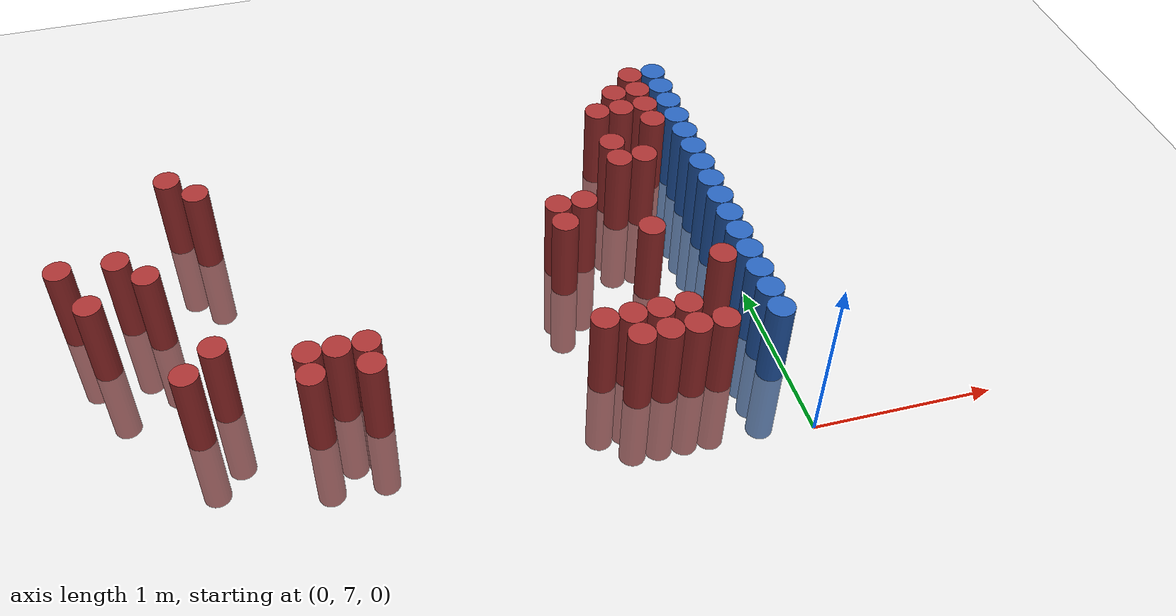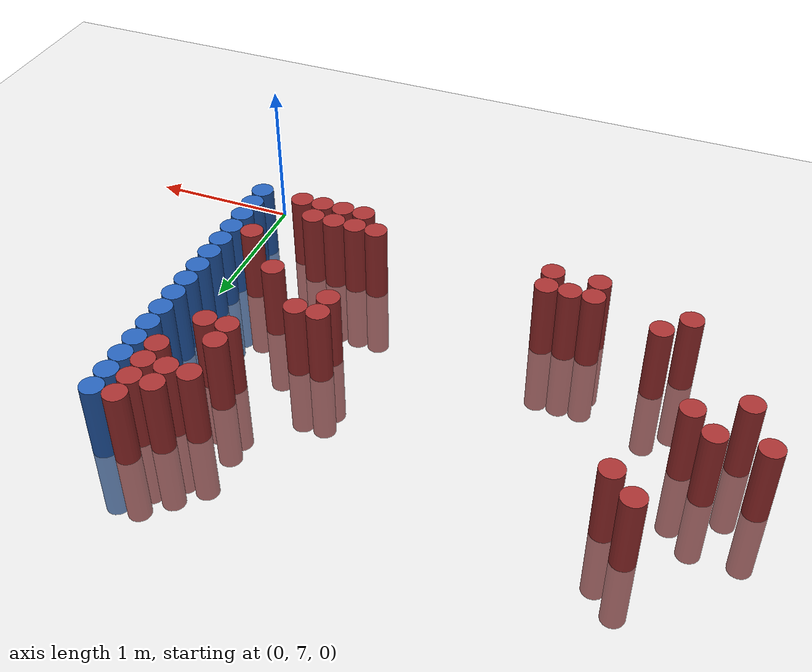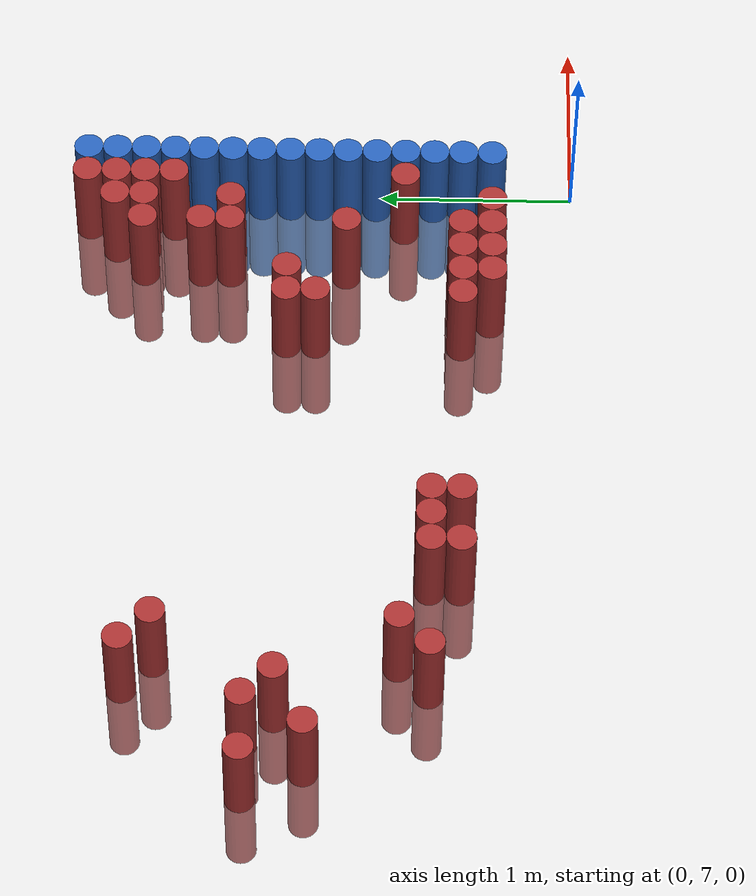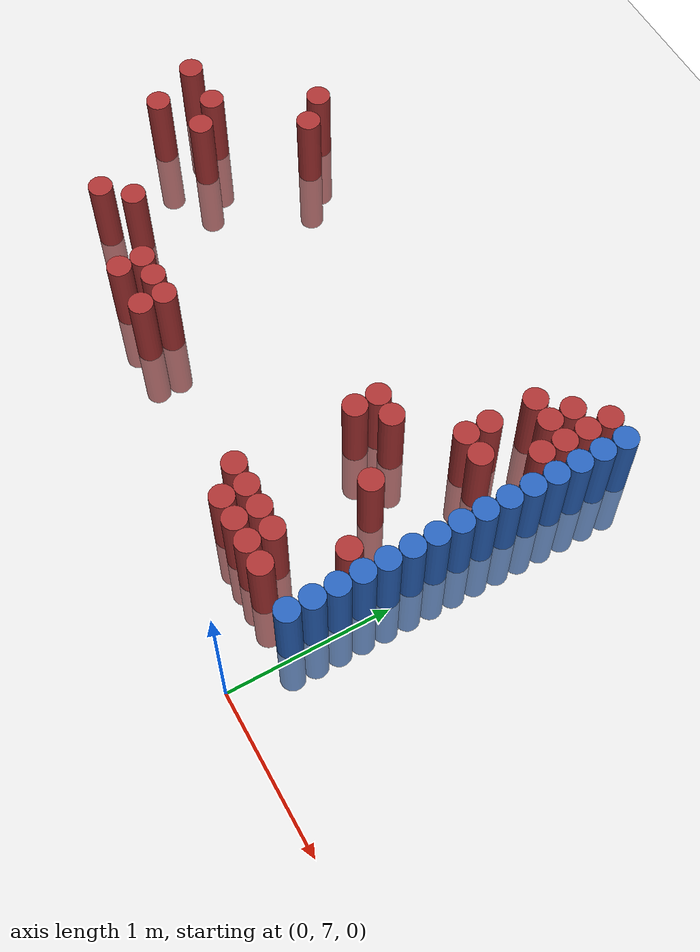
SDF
<sdf version="1.6">
 <world name="default">
  <model name="ground_plane">
   <static>1</static>
   <link name="link">
    <collision name="collision">
     <geometry><plane><normal>0 0 1</normal><size>100 100</size></plane></geometry>
     <surface><friction><ode><mu>100</mu><mu2>50</mu2></ode></friction></surface>
    </collision>
    <visual name="visual">
     <cast_shadows>0</cast_shadows>
     <geometry><plane><normal>0 0 1</normal><size>100 100</size></plane></geometry>
     <material>
      <script><uri>file://media/materials/scripts/gazebo.material</uri><name>Gazebo/Grey</name></script>
     </material>
    </visual>
   </link>
  </model>
  <model name="unit_cylinder_148">
   <static>1</static>
   <pose>-3.675000 8.625000 0.000000 0.000000 0.000000 0.000000</pose>
   <link name="link">
    <inertial>
     <mass>1</mass>
     <inertia><ixx>0.145833</ixx><ixy>0</ixy><ixz>0</ixz><iyy>0.145833</iyy><iyz>0</iyz><izz>0.125</izz></inertia>
    </inertial>
    <collision name="collision">
     <geometry><cylinder><radius>0.075000</radius><length>1</length></cylinder></geometry>
    </collision>
    <visual name="visual">
     <geometry><cylinder><radius>0.075000</radius><length>1</length></cylinder></geometry>
     <material>
      <ambient>0.648000 0.192000 0.192000 1</ambient>
      <diffuse>0.648000 0.192000 0.192000 1</diffuse>
     </material>
     <material>
      <script><name>Gazebo/Grey</name><uri>file://media/materials/scripts/gazebo.material</uri></script>
     </material>
    </visual>
   </link>
  </model>
  <model name="unit_cylinder_149">
   <static>1</static>
   <pose>-3.525000 8.325000 0.000000 0.000000 0.000000 0.000000</pose>
   <link name="link">
    <inertial>
     <mass>1</mass>
     <inertia><ixx>0.145833</ixx><ixy>0</ixy><ixz>0</ixz><iyy>0.145833</iyy><iyz>0</iyz><izz>0.125</izz></inertia>
    </inertial>
    <collision name="collision">
     <geometry><cylinder><radius>0.075000</radius><length>1</length></cylinder></geometry>
    </collision>
    <visual name="visual">
     <geometry><cylinder><radius>0.075000</radius><length>1</length></cylinder></geometry>
     <material>
      <ambient>0.648000 0.192000 0.192000 1</ambient>
      <diffuse>0.648000 0.192000 0.192000 1</diffuse>
     </material>
     <material>
      <script><name>Gazebo/Grey</name><uri>file://media/materials/scripts/gazebo.material</uri></script>
     </material>
    </visual>
   </link>
  </model>
  <model name="unit_cylinder_150">
   <static>1</static>
   <pose>-3.375000 8.625000 0.000000 0.000000 0.000000 0.000000</pose>
   <link name="link">
    <inertial>
     <mass>1</mass>
     <inertia><ixx>0.145833</ixx><ixy>0</ixy><ixz>0</ixz><iyy>0.145833</iyy><iyz>0</iyz><izz>0.125</izz></inertia>
    </inertial>
    <collision name="collision">
     <geometry><cylinder><radius>0.075000</radius><length>1</length></cylinder></geometry>
    </collision>
    <visual name="visual">
     <geometry><cylinder><radius>0.075000</radius><length>1</length></cylinder></geometry>
     <material>
      <ambient>0.648000 0.192000 0.192000 1</ambient>
      <diffuse>0.648000 0.192000 0.192000 1</diffuse>
     </material>
     <material>
      <script><name>Gazebo/Grey</name><uri>file://media/materials/scripts/gazebo.material</uri></script>
     </material>
    </visual>
   </link>
  </model>
  <model name="unit_cylinder_152">
   <static>1</static>
   <pose>-3.225000 8.475000 0.000000 0.000000 0.000000 0.000000</pose>
   <link name="link">
    <inertial>
     <mass>1</mass>
     <inertia><ixx>0.145833</ixx><ixy>0</ixy><ixz>0</ixz><iyy>0.145833</iyy><iyz>0</iyz><izz>0.125</izz></inertia>
    </inertial>
    <collision name="collision">
     <geometry><cylinder><radius>0.075000</radius><length>1</length></cylinder></geometry>
    </collision>
    <visual name="visual">
     <geometry><cylinder><radius>0.075000</radius><length>1</length></cylinder></geometry>
     <material>
      <ambient>0.648000 0.192000 0.192000 1</ambient>
      <diffuse>0.648000 0.192000 0.192000 1</diffuse>
     </material>
     <material>
      <script><name>Gazebo/Grey</name><uri>file://media/materials/scripts/gazebo.material</uri></script>
     </material>
    </visual>
   </link>
  </model>
  <model name="unit_cylinder_156">
   <static>1</static>
   <pose>-3.075000 7.725000 0.000000 0.000000 0.000000 0.000000</pose>
   <link name="link">
    <inertial>
     <mass>1</mass>
     <inertia><ixx>0.145833</ixx><ixy>0</ixy><ixz>0</ixz><iyy>0.145833</iyy><iyz>0</iyz><izz>0.125</izz></inertia>
    </inertial>
    <collision name="collision">
     <geometry><cylinder><radius>0.075000</radius><length>1</length></cylinder></geometry>
    </collision>
    <visual name="visual">
     <geometry><cylinder><radius>0.075000</radius><length>1</length></cylinder></geometry>
     <material>
      <ambient>0.648000 0.192000 0.192000 1</ambient>
      <diffuse>0.648000 0.192000 0.192000 1</diffuse>
     </material>
     <material>
      <script><name>Gazebo/Grey</name><uri>file://media/materials/scripts/gazebo.material</uri></script>
     </material>
    </visual>
   </link>
  </model>
  <model name="unit_cylinder_157">
   <static>1</static>
   <pose>-3.075000 9.225000 0.000000 0.000000 0.000000 0.000000</pose>
   <link name="link">
    <inertial>
     <mass>1</mass>
     <inertia><ixx>0.145833</ixx><ixy>0</ixy><ixz>0</ixz><iyy>0.145833</iyy><iyz>0</iyz><izz>0.125</izz></inertia>
    </inertial>
    <collision name="collision">
     <geometry><cylinder><radius>0.075000</radius><length>1</length></cylinder></geometry>
    </collision>
    <visual name="visual">
     <geometry><cylinder><radius>0.075000</radius><length>1</length></cylinder></geometry>
     <material>
      <ambient>0.648000 0.192000 0.192000 1</ambient>
      <diffuse>0.648000 0.192000 0.192000 1</diffuse>
     </material>
     <material>
      <script><name>Gazebo/Grey</name><uri>file://media/materials/scripts/gazebo.material</uri></script>
     </material>
    </visual>
   </link>
  </model>
  <model name="unit_cylinder_163">
   <static>1</static>
   <pose>-2.925000 7.875000 0.000000 0.000000 0.000000 0.000000</pose>
   <link name="link">
    <inertial>
     <mass>1</mass>
     <inertia><ixx>0.145833</ixx><ixy>0</ixy><ixz>0</ixz><iyy>0.145833</iyy><iyz>0</iyz><izz>0.125</izz></inertia>
    </inertial>
    <collision name="collision">
     <geometry><cylinder><radius>0.075000</radius><length>1</length></cylinder></geometry>
    </collision>
    <visual name="visual">
     <geometry><cylinder><radius>0.075000</radius><length>1</length></cylinder></geometry>
     <material>
      <ambient>0.648000 0.192000 0.192000 1</ambient>
      <diffuse>0.648000 0.192000 0.192000 1</diffuse>
     </material>
     <material>
      <script><name>Gazebo/Grey</name><uri>file://media/materials/scripts/gazebo.material</uri></script>
     </material>
    </visual>
   </link>
  </model>
  <model name="unit_cylinder_164">
   <static>1</static>
   <pose>-2.925000 9.075000 0.000000 0.000000 0.000000 0.000000</pose>
   <link name="link">
    <inertial>
     <mass>1</mass>
     <inertia><ixx>0.145833</ixx><ixy>0</ixy><ixz>0</ixz><iyy>0.145833</iyy><iyz>0</iyz><izz>0.125</izz></inertia>
    </inertial>
    <collision name="collision">
     <geometry><cylinder><radius>0.075000</radius><length>1</length></cylinder></geometry>
    </collision>
    <visual name="visual">
     <geometry><cylinder><radius>0.075000</radius><length>1</length></cylinder></geometry>
     <material>
      <ambient>0.648000 0.192000 0.192000 1</ambient>
      <diffuse>0.648000 0.192000 0.192000 1</diffuse>
     </material>
     <material>
      <script><name>Gazebo/Grey</name><uri>file://media/materials/scripts/gazebo.material</uri></script>
     </material>
    </visual>
   </link>
  </model>
  <model name="unit_cylinder_170">
   <static>1</static>
   <pose>-2.475000 7.575000 0.000000 0.000000 0.000000 0.000000</pose>
   <link name="link">
    <inertial>
     <mass>1</mass>
     <inertia><ixx>0.145833</ixx><ixy>0</ixy><ixz>0</ixz><iyy>0.145833</iyy><iyz>0</iyz><izz>0.125</izz></inertia>
    </inertial>
    <collision name="collision">
     <geometry><cylinder><radius>0.075000</radius><length>1</length></cylinder></geometry>
    </collision>
    <visual name="visual">
     <geometry><cylinder><radius>0.075000</radius><length>1</length></cylinder></geometry>
     <material>
      <ambient>0.648000 0.192000 0.192000 1</ambient>
      <diffuse>0.648000 0.192000 0.192000 1</diffuse>
     </material>
     <material>
      <script><name>Gazebo/Grey</name><uri>file://media/materials/scripts/gazebo.material</uri></script>
     </material>
    </visual>
   </link>
  </model>
  <model name="unit_cylinder_171">
   <static>1</static>
   <pose>-2.475000 7.725000 0.000000 0.000000 0.000000 0.000000</pose>
   <link name="link">
    <inertial>
     <mass>1</mass>
     <inertia><ixx>0.145833</ixx><ixy>0</ixy><ixz>0</ixz><iyy>0.145833</iyy><iyz>0</iyz><izz>0.125</izz></inertia>
    </inertial>
    <collision name="collision">
     <geometry><cylinder><radius>0.075000</radius><length>1</length></cylinder></geometry>
    </collision>
    <visual name="visual">
     <geometry><cylinder><radius>0.075000</radius><length>1</length></cylinder></geometry>
     <material>
      <ambient>0.648000 0.192000 0.192000 1</ambient>
      <diffuse>0.648000 0.192000 0.192000 1</diffuse>
     </material>
     <material>
      <script><name>Gazebo/Grey</name><uri>file://media/materials/scripts/gazebo.material</uri></script>
     </material>
    </visual>
   </link>
  </model>
  <model name="unit_cylinder_175">
   <static>1</static>
   <pose>-2.325000 7.725000 0.000000 0.000000 0.000000 0.000000</pose>
   <link name="link">
    <inertial>
     <mass>1</mass>
     <inertia><ixx>0.145833</ixx><ixy>0</ixy><ixz>0</ixz><iyy>0.145833</iyy><iyz>0</iyz><izz>0.125</izz></inertia>
    </inertial>
    <collision name="collision">
     <geometry><cylinder><radius>0.075000</radius><length>1</length></cylinder></geometry>
    </collision>
    <visual name="visual">
     <geometry><cylinder><radius>0.075000</radius><length>1</length></cylinder></geometry>
     <material>
      <ambient>0.648000 0.192000 0.192000 1</ambient>
      <diffuse>0.648000 0.192000 0.192000 1</diffuse>
     </material>
     <material>
      <script><name>Gazebo/Grey</name><uri>file://media/materials/scripts/gazebo.material</uri></script>
     </material>
    </visual>
   </link>
  </model>
  <model name="unit_cylinder_184">
   <static>1</static>
   <pose>-2.175000 7.575000 0.000000 0.000000 0.000000 0.000000</pose>
   <link name="link">
    <inertial>
     <mass>1</mass>
     <inertia><ixx>0.145833</ixx><ixy>0</ixy><ixz>0</ixz><iyy>0.145833</iyy><iyz>0</iyz><izz>0.125</izz></inertia>
    </inertial>
    <collision name="collision">
     <geometry><cylinder><radius>0.075000</radius><length>1</length></cylinder></geometry>
    </collision>
    <visual name="visual">
     <geometry><cylinder><radius>0.075000</radius><length>1</length></cylinder></geometry>
     <material>
      <ambient>0.648000 0.192000 0.192000 1</ambient>
      <diffuse>0.648000 0.192000 0.192000 1</diffuse>
     </material>
     <material>
      <script><name>Gazebo/Grey</name><uri>file://media/materials/scripts/gazebo.material</uri></script>
     </material>
    </visual>
   </link>
  </model>
  <model name="unit_cylinder_185">
   <static>1</static>
   <pose>-2.175000 7.725000 0.000000 0.000000 0.000000 0.000000</pose>
   <link name="link">
    <inertial>
     <mass>1</mass>
     <inertia><ixx>0.145833</ixx><ixy>0</ixy><ixz>0</ixz><iyy>0.145833</iyy><iyz>0</iyz><izz>0.125</izz></inertia>
    </inertial>
    <collision name="collision">
     <geometry><cylinder><radius>0.075000</radius><length>1</length></cylinder></geometry>
    </collision>
    <visual name="visual">
     <geometry><cylinder><radius>0.075000</radius><length>1</length></cylinder></geometry>
     <material>
      <ambient>0.648000 0.192000 0.192000 1</ambient>
      <diffuse>0.648000 0.192000 0.192000 1</diffuse>
     </material>
     <material>
      <script><name>Gazebo/Grey</name><uri>file://media/materials/scripts/gazebo.material</uri></script>
     </material>
    </visual>
   </link>
  </model>
  <model name="unit_cylinder_194">
   <static>1</static>
   <pose>-0.975000 7.575000 0.000000 0.000000 0.000000 0.000000</pose>
   <link name="link">
    <inertial>
     <mass>1</mass>
     <inertia><ixx>0.145833</ixx><ixy>0</ixy><ixz>0</ixz><iyy>0.145833</iyy><iyz>0</iyz><izz>0.125</izz></inertia>
    </inertial>
    <collision name="collision">
     <geometry><cylinder><radius>0.075000</radius><length>1</length></cylinder></geometry>
    </collision>
    <visual name="visual">
     <geometry><cylinder><radius>0.075000</radius><length>1</length></cylinder></geometry>
     <material>
      <ambient>0.648000 0.192000 0.192000 1</ambient>
      <diffuse>0.648000 0.192000 0.192000 1</diffuse>
     </material>
     <material>
      <script><name>Gazebo/Grey</name><uri>file://media/materials/scripts/gazebo.material</uri></script>
     </material>
    </visual>
   </link>
  </model>
  <model name="unit_cylinder_195">
   <static>1</static>
   <pose>-0.975000 8.325000 0.000000 0.000000 0.000000 0.000000</pose>
   <link name="link">
    <inertial>
     <mass>1</mass>
     <inertia><ixx>0.145833</ixx><ixy>0</ixy><ixz>0</ixz><iyy>0.145833</iyy><iyz>0</iyz><izz>0.125</izz></inertia>
    </inertial>
    <collision name="collision">
     <geometry><cylinder><radius>0.075000</radius><length>1</length></cylinder></geometry>
    </collision>
    <visual name="visual">
     <geometry><cylinder><radius>0.075000</radius><length>1</length></cylinder></geometry>
     <material>
      <ambient>0.648000 0.192000 0.192000 1</ambient>
      <diffuse>0.648000 0.192000 0.192000 1</diffuse>
     </material>
     <material>
      <script><name>Gazebo/Grey</name><uri>file://media/materials/scripts/gazebo.material</uri></script>
     </material>
    </visual>
   </link>
  </model>
  <model name="unit_cylinder_196">
   <static>1</static>
   <pose>-0.975000 8.475000 0.000000 0.000000 0.000000 0.000000</pose>
   <link name="link">
    <inertial>
     <mass>1</mass>
     <inertia><ixx>0.145833</ixx><ixy>0</ixy><ixz>0</ixz><iyy>0.145833</iyy><iyz>0</iyz><izz>0.125</izz></inertia>
    </inertial>
    <collision name="collision">
     <geometry><cylinder><radius>0.075000</radius><length>1</length></cylinder></geometry>
    </collision>
    <visual name="visual">
     <geometry><cylinder><radius>0.075000</radius><length>1</length></cylinder></geometry>
     <material>
      <ambient>0.648000 0.192000 0.192000 1</ambient>
      <diffuse>0.648000 0.192000 0.192000 1</diffuse>
     </material>
     <material>
      <script><name>Gazebo/Grey</name><uri>file://media/materials/scripts/gazebo.material</uri></script>
     </material>
    </visual>
   </link>
  </model>
  <model name="unit_cylinder_197">
   <static>1</static>
   <pose>-0.825000 7.425000 0.000000 0.000000 0.000000 0.000000</pose>
   <link name="link">
    <inertial>
     <mass>1</mass>
     <inertia><ixx>0.145833</ixx><ixy>0</ixy><ixz>0</ixz><iyy>0.145833</iyy><iyz>0</iyz><izz>0.125</izz></inertia>
    </inertial>
    <collision name="collision">
     <geometry><cylinder><radius>0.075000</radius><length>1</length></cylinder></geometry>
    </collision>
    <visual name="visual">
     <geometry><cylinder><radius>0.075000</radius><length>1</length></cylinder></geometry>
     <material>
      <ambient>0.648000 0.192000 0.192000 1</ambient>
      <diffuse>0.648000 0.192000 0.192000 1</diffuse>
     </material>
     <material>
      <script><name>Gazebo/Grey</name><uri>file://media/materials/scripts/gazebo.material</uri></script>
     </material>
    </visual>
   </link>
  </model>
  <model name="unit_cylinder_198">
   <static>1</static>
   <pose>-0.825000 7.575000 0.000000 0.000000 0.000000 0.000000</pose>
   <link name="link">
    <inertial>
     <mass>1</mass>
     <inertia><ixx>0.145833</ixx><ixy>0</ixy><ixz>0</ixz><iyy>0.145833</iyy><iyz>0</iyz><izz>0.125</izz></inertia>
    </inertial>
    <collision name="collision">
     <geometry><cylinder><radius>0.075000</radius><length>1</length></cylinder></geometry>
    </collision>
    <visual name="visual">
     <geometry><cylinder><radius>0.075000</radius><length>1</length></cylinder></geometry>
     <material>
      <ambient>0.648000 0.192000 0.192000 1</ambient>
      <diffuse>0.648000 0.192000 0.192000 1</diffuse>
     </material>
     <material>
      <script><name>Gazebo/Grey</name><uri>file://media/materials/scripts/gazebo.material</uri></script>
     </material>
    </visual>
   </link>
  </model>
  <model name="unit_cylinder_199">
   <static>1</static>
   <pose>-0.825000 8.475000 0.000000 0.000000 0.000000 0.000000</pose>
   <link name="link">
    <inertial>
     <mass>1</mass>
     <inertia><ixx>0.145833</ixx><ixy>0</ixy><ixz>0</ixz><iyy>0.145833</iyy><iyz>0</iyz><izz>0.125</izz></inertia>
    </inertial>
    <collision name="collision">
     <geometry><cylinder><radius>0.075000</radius><length>1</length></cylinder></geometry>
    </collision>
    <visual name="visual">
     <geometry><cylinder><radius>0.075000</radius><length>1</length></cylinder></geometry>
     <material>
      <ambient>0.648000 0.192000 0.192000 1</ambient>
      <diffuse>0.648000 0.192000 0.192000 1</diffuse>
     </material>
     <material>
      <script><name>Gazebo/Grey</name><uri>file://media/materials/scripts/gazebo.material</uri></script>
     </material>
    </visual>
   </link>
  </model>
  <model name="unit_cylinder_200">
   <static>1</static>
   <pose>-0.675000 7.425000 0.000000 0.000000 0.000000 0.000000</pose>
   <link name="link">
    <inertial>
     <mass>1</mass>
     <inertia><ixx>0.145833</ixx><ixy>0</ixy><ixz>0</ixz><iyy>0.145833</iyy><iyz>0</iyz><izz>0.125</izz></inertia>
    </inertial>
    <collision name="collision">
     <geometry><cylinder><radius>0.075000</radius><length>1</length></cylinder></geometry>
    </collision>
    <visual name="visual">
     <geometry><cylinder><radius>0.075000</radius><length>1</length></cylinder></geometry>
     <material>
      <ambient>0.648000 0.192000 0.192000 1</ambient>
      <diffuse>0.648000 0.192000 0.192000 1</diffuse>
     </material>
     <material>
      <script><name>Gazebo/Grey</name><uri>file://media/materials/scripts/gazebo.material</uri></script>
     </material>
    </visual>
   </link>
  </model>
  <model name="unit_cylinder_201">
   <static>1</static>
   <pose>-0.675000 7.575000 0.000000 0.000000 0.000000 0.000000</pose>
   <link name="link">
    <inertial>
     <mass>1</mass>
     <inertia><ixx>0.145833</ixx><ixy>0</ixy><ixz>0</ixz><iyy>0.145833</iyy><iyz>0</iyz><izz>0.125</izz></inertia>
    </inertial>
    <collision name="collision">
     <geometry><cylinder><radius>0.075000</radius><length>1</length></cylinder></geometry>
    </collision>
    <visual name="visual">
     <geometry><cylinder><radius>0.075000</radius><length>1</length></cylinder></geometry>
     <material>
      <ambient>0.648000 0.192000 0.192000 1</ambient>
      <diffuse>0.648000 0.192000 0.192000 1</diffuse>
     </material>
     <material>
      <script><name>Gazebo/Grey</name><uri>file://media/materials/scripts/gazebo.material</uri></script>
     </material>
    </visual>
   </link>
  </model>
  <model name="unit_cylinder_202">
   <static>1</static>
   <pose>-0.525000 7.425000 0.000000 0.000000 0.000000 0.000000</pose>
   <link name="link">
    <inertial>
     <mass>1</mass>
     <inertia><ixx>0.145833</ixx><ixy>0</ixy><ixz>0</ixz><iyy>0.145833</iyy><iyz>0</iyz><izz>0.125</izz></inertia>
    </inertial>
    <collision name="collision">
     <geometry><cylinder><radius>0.075000</radius><length>1</length></cylinder></geometry>
    </collision>
    <visual name="visual">
     <geometry><cylinder><radius>0.075000</radius><length>1</length></cylinder></geometry>
     <material>
      <ambient>0.648000 0.192000 0.192000 1</ambient>
      <diffuse>0.648000 0.192000 0.192000 1</diffuse>
     </material>
     <material>
      <script><name>Gazebo/Grey</name><uri>file://media/materials/scripts/gazebo.material</uri></script>
     </material>
    </visual>
   </link>
  </model>
  <model name="unit_cylinder_203">
   <static>1</static>
   <pose>-0.525000 7.575000 0.000000 0.000000 0.000000 0.000000</pose>
   <link name="link">
    <inertial>
     <mass>1</mass>
     <inertia><ixx>0.145833</ixx><ixy>0</ixy><ixz>0</ixz><iyy>0.145833</iyy><iyz>0</iyz><izz>0.125</izz></inertia>
    </inertial>
    <collision name="collision">
     <geometry><cylinder><radius>0.075000</radius><length>1</length></cylinder></geometry>
    </collision>
    <visual name="visual">
     <geometry><cylinder><radius>0.075000</radius><length>1</length></cylinder></geometry>
     <material>
      <ambient>0.648000 0.192000 0.192000 1</ambient>
      <diffuse>0.648000 0.192000 0.192000 1</diffuse>
     </material>
     <material>
      <script><name>Gazebo/Grey</name><uri>file://media/materials/scripts/gazebo.material</uri></script>
     </material>
    </visual>
   </link>
  </model>
  <model name="unit_cylinder_204">
   <static>1</static>
   <pose>-0.525000 8.175000 0.000000 0.000000 0.000000 0.000000</pose>
   <link name="link">
    <inertial>
     <mass>1</mass>
     <inertia><ixx>0.145833</ixx><ixy>0</ixy><ixz>0</ixz><iyy>0.145833</iyy><iyz>0</iyz><izz>0.125</izz></inertia>
    </inertial>
    <collision name="collision">
     <geometry><cylinder><radius>0.075000</radius><length>1</length></cylinder></geometry>
    </collision>
    <visual name="visual">
     <geometry><cylinder><radius>0.075000</radius><length>1</length></cylinder></geometry>
     <material>
      <ambient>0.648000 0.192000 0.192000 1</ambient>
      <diffuse>0.648000 0.192000 0.192000 1</diffuse>
     </material>
     <material>
      <script><name>Gazebo/Grey</name><uri>file://media/materials/scripts/gazebo.material</uri></script>
     </material>
    </visual>
   </link>
  </model>
  <model name="unit_cylinder_205">
   <static>1</static>
   <pose>-0.525000 8.775000 0.000000 0.000000 0.000000 0.000000</pose>
   <link name="link">
    <inertial>
     <mass>1</mass>
     <inertia><ixx>0.145833</ixx><ixy>0</ixy><ixz>0</ixz><iyy>0.145833</iyy><iyz>0</iyz><izz>0.125</izz></inertia>
    </inertial>
    <collision name="collision">
     <geometry><cylinder><radius>0.075000</radius><length>1</length></cylinder></geometry>
    </collision>
    <visual name="visual">
     <geometry><cylinder><radius>0.075000</radius><length>1</length></cylinder></geometry>
     <material>
      <ambient>0.648000 0.192000 0.192000 1</ambient>
      <diffuse>0.648000 0.192000 0.192000 1</diffuse>
     </material>
     <material>
      <script><name>Gazebo/Grey</name><uri>file://media/materials/scripts/gazebo.material</uri></script>
     </material>
    </visual>
   </link>
  </model>
  <model name="unit_cylinder_206">
   <static>1</static>
   <pose>-0.525000 8.925000 0.000000 0.000000 0.000000 0.000000</pose>
   <link name="link">
    <inertial>
     <mass>1</mass>
     <inertia><ixx>0.145833</ixx><ixy>0</ixy><ixz>0</ixz><iyy>0.145833</iyy><iyz>0</iyz><izz>0.125</izz></inertia>
    </inertial>
    <collision name="collision">
     <geometry><cylinder><radius>0.075000</radius><length>1</length></cylinder></geometry>
    </collision>
    <visual name="visual">
     <geometry><cylinder><radius>0.075000</radius><length>1</length></cylinder></geometry>
     <material>
      <ambient>0.648000 0.192000 0.192000 1</ambient>
      <diffuse>0.648000 0.192000 0.192000 1</diffuse>
     </material>
     <material>
      <script><name>Gazebo/Grey</name><uri>file://media/materials/scripts/gazebo.material</uri></script>
     </material>
    </visual>
   </link>
  </model>
  <model name="unit_cylinder_207">
   <static>1</static>
   <pose>-0.525000 9.225000 0.000000 0.000000 0.000000 0.000000</pose>
   <link name="link">
    <inertial>
     <mass>1</mass>
     <inertia><ixx>0.145833</ixx><ixy>0</ixy><ixz>0</ixz><iyy>0.145833</iyy><iyz>0</iyz><izz>0.125</izz></inertia>
    </inertial>
    <collision name="collision">
     <geometry><cylinder><radius>0.075000</radius><length>1</length></cylinder></geometry>
    </collision>
    <visual name="visual">
     <geometry><cylinder><radius>0.075000</radius><length>1</length></cylinder></geometry>
     <material>
      <ambient>0.648000 0.192000 0.192000 1</ambient>
      <diffuse>0.648000 0.192000 0.192000 1</diffuse>
     </material>
     <material>
      <script><name>Gazebo/Grey</name><uri>file://media/materials/scripts/gazebo.material</uri></script>
     </material>
    </visual>
   </link>
  </model>
  <model name="unit_cylinder_209">
   <static>1</static>
   <pose>-0.375000 7.425000 0.000000 0.000000 0.000000 0.000000</pose>
   <link name="link">
    <inertial>
     <mass>1</mass>
     <inertia><ixx>0.145833</ixx><ixy>0</ixy><ixz>0</ixz><iyy>0.145833</iyy><iyz>0</iyz><izz>0.125</izz></inertia>
    </inertial>
    <collision name="collision">
     <geometry><cylinder><radius>0.075000</radius><length>1</length></cylinder></geometry>
    </collision>
    <visual name="visual">
     <geometry><cylinder><radius>0.075000</radius><length>1</length></cylinder></geometry>
     <material>
      <ambient>0.648000 0.192000 0.192000 1</ambient>
      <diffuse>0.648000 0.192000 0.192000 1</diffuse>
     </material>
     <material>
      <script><name>Gazebo/Grey</name><uri>file://media/materials/scripts/gazebo.material</uri></script>
     </material>
    </visual>
   </link>
  </model>
  <model name="unit_cylinder_210">
   <static>1</static>
   <pose>-0.375000 8.775000 0.000000 0.000000 0.000000 0.000000</pose>
   <link name="link">
    <inertial>
     <mass>1</mass>
     <inertia><ixx>0.145833</ixx><ixy>0</ixy><ixz>0</ixz><iyy>0.145833</iyy><iyz>0</iyz><izz>0.125</izz></inertia>
    </inertial>
    <collision name="collision">
     <geometry><cylinder><radius>0.075000</radius><length>1</length></cylinder></geometry>
    </collision>
    <visual name="visual">
     <geometry><cylinder><radius>0.075000</radius><length>1</length></cylinder></geometry>
     <material>
      <ambient>0.648000 0.192000 0.192000 1</ambient>
      <diffuse>0.648000 0.192000 0.192000 1</diffuse>
     </material>
     <material>
      <script><name>Gazebo/Grey</name><uri>file://media/materials/scripts/gazebo.material</uri></script>
     </material>
    </visual>
   </link>
  </model>
  <model name="unit_cylinder_211">
   <static>1</static>
   <pose>-0.375000 9.225000 0.000000 0.000000 0.000000 0.000000</pose>
   <link name="link">
    <inertial>
     <mass>1</mass>
     <inertia><ixx>0.145833</ixx><ixy>0</ixy><ixz>0</ixz><iyy>0.145833</iyy><iyz>0</iyz><izz>0.125</izz></inertia>
    </inertial>
    <collision name="collision">
     <geometry><cylinder><radius>0.075000</radius><length>1</length></cylinder></geometry>
    </collision>
    <visual name="visual">
     <geometry><cylinder><radius>0.075000</radius><length>1</length></cylinder></geometry>
     <material>
      <ambient>0.648000 0.192000 0.192000 1</ambient>
      <diffuse>0.648000 0.192000 0.192000 1</diffuse>
     </material>
     <material>
      <script><name>Gazebo/Grey</name><uri>file://media/materials/scripts/gazebo.material</uri></script>
     </material>
    </visual>
   </link>
  </model>
  <model name="unit_cylinder_212">
   <static>1</static>
   <pose>-0.375000 9.375000 0.000000 0.000000 0.000000 0.000000</pose>
   <link name="link">
    <inertial>
     <mass>1</mass>
     <inertia><ixx>0.145833</ixx><ixy>0</ixy><ixz>0</ixz><iyy>0.145833</iyy><iyz>0</iyz><izz>0.125</izz></inertia>
    </inertial>
    <collision name="collision">
     <geometry><cylinder><radius>0.075000</radius><length>1</length></cylinder></geometry>
    </collision>
    <visual name="visual">
     <geometry><cylinder><radius>0.075000</radius><length>1</length></cylinder></geometry>
     <material>
      <ambient>0.648000 0.192000 0.192000 1</ambient>
      <diffuse>0.648000 0.192000 0.192000 1</diffuse>
     </material>
     <material>
      <script><name>Gazebo/Grey</name><uri>file://media/materials/scripts/gazebo.material</uri></script>
     </material>
    </visual>
   </link>
  </model>
  <model name="unit_cylinder_219">
   <static>1</static>
   <pose>-0.225000 7.875000 0.000000 0.000000 0.000000 0.000000</pose>
   <link name="link">
    <inertial>
     <mass>1</mass>
     <inertia><ixx>0.145833</ixx><ixy>0</ixy><ixz>0</ixz><iyy>0.145833</iyy><iyz>0</iyz><izz>0.125</izz></inertia>
    </inertial>
    <collision name="collision">
     <geometry><cylinder><radius>0.075000</radius><length>1</length></cylinder></geometry>
    </collision>
    <visual name="visual">
     <geometry><cylinder><radius>0.075000</radius><length>1</length></cylinder></geometry>
     <material>
      <ambient>0.648000 0.192000 0.192000 1</ambient>
      <diffuse>0.648000 0.192000 0.192000 1</diffuse>
     </material>
     <material>
      <script><name>Gazebo/Grey</name><uri>file://media/materials/scripts/gazebo.material</uri></script>
     </material>
    </visual>
   </link>
  </model>
  <model name="unit_cylinder_220">
   <static>1</static>
   <pose>-0.225000 9.075000 0.000000 0.000000 0.000000 0.000000</pose>
   <link name="link">
    <inertial>
     <mass>1</mass>
     <inertia><ixx>0.145833</ixx><ixy>0</ixy><ixz>0</ixz><iyy>0.145833</iyy><iyz>0</iyz><izz>0.125</izz></inertia>
    </inertial>
    <collision name="collision">
     <geometry><cylinder><radius>0.075000</radius><length>1</length></cylinder></geometry>
    </collision>
    <visual name="visual">
     <geometry><cylinder><radius>0.075000</radius><length>1</length></cylinder></geometry>
     <material>
      <ambient>0.648000 0.192000 0.192000 1</ambient>
      <diffuse>0.648000 0.192000 0.192000 1</diffuse>
     </material>
     <material>
      <script><name>Gazebo/Grey</name><uri>file://media/materials/scripts/gazebo.material</uri></script>
     </material>
    </visual>
   </link>
  </model>
  <model name="unit_cylinder_221">
   <static>1</static>
   <pose>-0.225000 9.225000 0.000000 0.000000 0.000000 0.000000</pose>
   <link name="link">
    <inertial>
     <mass>1</mass>
     <inertia><ixx>0.145833</ixx><ixy>0</ixy><ixz>0</ixz><iyy>0.145833</iyy><iyz>0</iyz><izz>0.125</izz></inertia>
    </inertial>
    <collision name="collision">
     <geometry><cylinder><radius>0.075000</radius><length>1</length></cylinder></geometry>
    </collision>
    <visual name="visual">
     <geometry><cylinder><radius>0.075000</radius><length>1</length></cylinder></geometry>
     <material>
      <ambient>0.648000 0.192000 0.192000 1</ambient>
      <diffuse>0.648000 0.192000 0.192000 1</diffuse>
     </material>
     <material>
      <script><name>Gazebo/Grey</name><uri>file://media/materials/scripts/gazebo.material</uri></script>
     </material>
    </visual>
   </link>
  </model>
  <model name="unit_cylinder_222">
   <static>1</static>
   <pose>-0.225000 9.375000 0.000000 0.000000 0.000000 0.000000</pose>
   <link name="link">
    <inertial>
     <mass>1</mass>
     <inertia><ixx>0.145833</ixx><ixy>0</ixy><ixz>0</ixz><iyy>0.145833</iyy><iyz>0</iyz><izz>0.125</izz></inertia>
    </inertial>
    <collision name="collision">
     <geometry><cylinder><radius>0.075000</radius><length>1</length></cylinder></geometry>
    </collision>
    <visual name="visual">
     <geometry><cylinder><radius>0.075000</radius><length>1</length></cylinder></geometry>
     <material>
      <ambient>0.648000 0.192000 0.192000 1</ambient>
      <diffuse>0.648000 0.192000 0.192000 1</diffuse>
     </material>
     <material>
      <script><name>Gazebo/Grey</name><uri>file://media/materials/scripts/gazebo.material</uri></script>
     </material>
    </visual>
   </link>
  </model>
  <model name="unit_cylinder_223">
   <static>1</static>
   <pose>-0.225000 9.525000 0.000000 0.000000 0.000000 0.000000</pose>
   <link name="link">
    <inertial>
     <mass>1</mass>
     <inertia><ixx>0.145833</ixx><ixy>0</ixy><ixz>0</ixz><iyy>0.145833</iyy><iyz>0</iyz><izz>0.125</izz></inertia>
    </inertial>
    <collision name="collision">
     <geometry><cylinder><radius>0.075000</radius><length>1</length></cylinder></geometry>
    </collision>
    <visual name="visual">
     <geometry><cylinder><radius>0.075000</radius><length>1</length></cylinder></geometry>
     <material>
      <ambient>0.648000 0.192000 0.192000 1</ambient>
      <diffuse>0.648000 0.192000 0.192000 1</diffuse>
     </material>
     <material>
      <script><name>Gazebo/Grey</name><uri>file://media/materials/scripts/gazebo.material</uri></script>
     </material>
    </visual>
   </link>
  </model>
  <model name="unit_cylinder_239">
   <static>1</static>
   <pose>-0.075000 7.425000 0.000000 0.000000 0.000000 0.000000</pose>
   <link name="link">
    <inertial>
     <mass>1</mass>
     <inertia><ixx>0.145833</ixx><ixy>0</ixy><ixz>0</ixz><iyy>0.145833</iyy><iyz>0</iyz><izz>0.125</izz></inertia>
    </inertial>
    <collision name="collision">
     <geometry><cylinder><radius>0.075000</radius><length>1</length></cylinder></geometry>
    </collision>
    <visual name="visual">
     <geometry><cylinder><radius>0.075000</radius><length>1</length></cylinder></geometry>
     <material>
      <ambient>0.152000 0.379000 0.720000 1</ambient>
      <diffuse>0.152000 0.379000 0.720000 1</diffuse>
     </material>
     <material>
      <script><name>Gazebo/Grey</name><uri>file://media/materials/scripts/gazebo.material</uri></script>
     </material>
    </visual>
   </link>
  </model>
  <model name="unit_cylinder_240">
   <static>1</static>
   <pose>-0.075000 7.575000 0.000000 0.000000 0.000000 0.000000</pose>
   <link name="link">
    <inertial>
     <mass>1</mass>
     <inertia><ixx>0.145833</ixx><ixy>0</ixy><ixz>0</ixz><iyy>0.145833</iyy><iyz>0</iyz><izz>0.125</izz></inertia>
    </inertial>
    <collision name="collision">
     <geometry><cylinder><radius>0.075000</radius><length>1</length></cylinder></geometry>
    </collision>
    <visual name="visual">
     <geometry><cylinder><radius>0.075000</radius><length>1</length></cylinder></geometry>
     <material>
      <ambient>0.152000 0.379000 0.720000 1</ambient>
      <diffuse>0.152000 0.379000 0.720000 1</diffuse>
     </material>
     <material>
      <script><name>Gazebo/Grey</name><uri>file://media/materials/scripts/gazebo.material</uri></script>
     </material>
    </visual>
   </link>
  </model>
  <model name="unit_cylinder_241">
   <static>1</static>
   <pose>-0.075000 7.725000 0.000000 0.000000 0.000000 0.000000</pose>
   <link name="link">
    <inertial>
     <mass>1</mass>
     <inertia><ixx>0.145833</ixx><ixy>0</ixy><ixz>0</ixz><iyy>0.145833</iyy><iyz>0</iyz><izz>0.125</izz></inertia>
    </inertial>
    <collision name="collision">
     <geometry><cylinder><radius>0.075000</radius><length>1</length></cylinder></geometry>
    </collision>
    <visual name="visual">
     <geometry><cylinder><radius>0.075000</radius><length>1</length></cylinder></geometry>
     <material>
      <ambient>0.152000 0.379000 0.720000 1</ambient>
      <diffuse>0.152000 0.379000 0.720000 1</diffuse>
     </material>
     <material>
      <script><name>Gazebo/Grey</name><uri>file://media/materials/scripts/gazebo.material</uri></script>
     </material>
    </visual>
   </link>
  </model>
  <model name="unit_cylinder_242">
   <static>1</static>
   <pose>-0.075000 7.875000 0.000000 0.000000 0.000000 0.000000</pose>
   <link name="link">
    <inertial>
     <mass>1</mass>
     <inertia><ixx>0.145833</ixx><ixy>0</ixy><ixz>0</ixz><iyy>0.145833</iyy><iyz>0</iyz><izz>0.125</izz></inertia>
    </inertial>
    <collision name="collision">
     <geometry><cylinder><radius>0.075000</radius><length>1</length></cylinder></geometry>
    </collision>
    <visual name="visual">
     <geometry><cylinder><radius>0.075000</radius><length>1</length></cylinder></geometry>
     <material>
      <ambient>0.152000 0.379000 0.720000 1</ambient>
      <diffuse>0.152000 0.379000 0.720000 1</diffuse>
     </material>
     <material>
      <script><name>Gazebo/Grey</name><uri>file://media/materials/scripts/gazebo.material</uri></script>
     </material>
    </visual>
   </link>
  </model>
  <model name="unit_cylinder_243">
   <static>1</static>
   <pose>-0.075000 8.025000 0.000000 0.000000 0.000000 0.000000</pose>
   <link name="link">
    <inertial>
     <mass>1</mass>
     <inertia><ixx>0.145833</ixx><ixy>0</ixy><ixz>0</ixz><iyy>0.145833</iyy><iyz>0</iyz><izz>0.125</izz></inertia>
    </inertial>
    <collision name="collision">
     <geometry><cylinder><radius>0.075000</radius><length>1</length></cylinder></geometry>
    </collision>
    <visual name="visual">
     <geometry><cylinder><radius>0.075000</radius><length>1</length></cylinder></geometry>
     <material>
      <ambient>0.152000 0.379000 0.720000 1</ambient>
      <diffuse>0.152000 0.379000 0.720000 1</diffuse>
     </material>
     <material>
      <script><name>Gazebo/Grey</name><uri>file://media/materials/scripts/gazebo.material</uri></script>
     </material>
    </visual>
   </link>
  </model>
  <model name="unit_cylinder_244">
   <static>1</static>
   <pose>-0.075000 8.175000 0.000000 0.000000 0.000000 0.000000</pose>
   <link name="link">
    <inertial>
     <mass>1</mass>
     <inertia><ixx>0.145833</ixx><ixy>0</ixy><ixz>0</ixz><iyy>0.145833</iyy><iyz>0</iyz><izz>0.125</izz></inertia>
    </inertial>
    <collision name="collision">
     <geometry><cylinder><radius>0.075000</radius><length>1</length></cylinder></geometry>
    </collision>
    <visual name="visual">
     <geometry><cylinder><radius>0.075000</radius><length>1</length></cylinder></geometry>
     <material>
      <ambient>0.152000 0.379000 0.720000 1</ambient>
      <diffuse>0.152000 0.379000 0.720000 1</diffuse>
     </material>
     <material>
      <script><name>Gazebo/Grey</name><uri>file://media/materials/scripts/gazebo.material</uri></script>
     </material>
    </visual>
   </link>
  </model>
  <model name="unit_cylinder_245">
   <static>1</static>
   <pose>-0.075000 8.325000 0.000000 0.000000 0.000000 0.000000</pose>
   <link name="link">
    <inertial>
     <mass>1</mass>
     <inertia><ixx>0.145833</ixx><ixy>0</ixy><ixz>0</ixz><iyy>0.145833</iyy><iyz>0</iyz><izz>0.125</izz></inertia>
    </inertial>
    <collision name="collision">
     <geometry><cylinder><radius>0.075000</radius><length>1</length></cylinder></geometry>
    </collision>
    <visual name="visual">
     <geometry><cylinder><radius>0.075000</radius><length>1</length></cylinder></geometry>
     <material>
      <ambient>0.152000 0.379000 0.720000 1</ambient>
      <diffuse>0.152000 0.379000 0.720000 1</diffuse>
     </material>
     <material>
      <script><name>Gazebo/Grey</name><uri>file://media/materials/scripts/gazebo.material</uri></script>
     </material>
    </visual>
   </link>
  </model>
  <model name="unit_cylinder_246">
   <static>1</static>
   <pose>-0.075000 8.475000 0.000000 0.000000 0.000000 0.000000</pose>
   <link name="link">
    <inertial>
     <mass>1</mass>
     <inertia><ixx>0.145833</ixx><ixy>0</ixy><ixz>0</ixz><iyy>0.145833</iyy><iyz>0</iyz><izz>0.125</izz></inertia>
    </inertial>
    <collision name="collision">
     <geometry><cylinder><radius>0.075000</radius><length>1</length></cylinder></geometry>
    </collision>
    <visual name="visual">
     <geometry><cylinder><radius>0.075000</radius><length>1</length></cylinder></geometry>
     <material>
      <ambient>0.152000 0.379000 0.720000 1</ambient>
      <diffuse>0.152000 0.379000 0.720000 1</diffuse>
     </material>
     <material>
      <script><name>Gazebo/Grey</name><uri>file://media/materials/scripts/gazebo.material</uri></script>
     </material>
    </visual>
   </link>
  </model>
  <model name="unit_cylinder_247">
   <static>1</static>
   <pose>-0.075000 8.625000 0.000000 0.000000 0.000000 0.000000</pose>
   <link name="link">
    <inertial>
     <mass>1</mass>
     <inertia><ixx>0.145833</ixx><ixy>0</ixy><ixz>0</ixz><iyy>0.145833</iyy><iyz>0</iyz><izz>0.125</izz></inertia>
    </inertial>
    <collision name="collision">
     <geometry><cylinder><radius>0.075000</radius><length>1</length></cylinder></geometry>
    </collision>
    <visual name="visual">
     <geometry><cylinder><radius>0.075000</radius><length>1</length></cylinder></geometry>
     <material>
      <ambient>0.152000 0.379000 0.720000 1</ambient>
      <diffuse>0.152000 0.379000 0.720000 1</diffuse>
     </material>
     <material>
      <script><name>Gazebo/Grey</name><uri>file://media/materials/scripts/gazebo.material</uri></script>
     </material>
    </visual>
   </link>
  </model>
  <model name="unit_cylinder_248">
   <static>1</static>
   <pose>-0.075000 8.775000 0.000000 0.000000 0.000000 0.000000</pose>
   <link name="link">
    <inertial>
     <mass>1</mass>
     <inertia><ixx>0.145833</ixx><ixy>0</ixy><ixz>0</ixz><iyy>0.145833</iyy><iyz>0</iyz><izz>0.125</izz></inertia>
    </inertial>
    <collision name="collision">
     <geometry><cylinder><radius>0.075000</radius><length>1</length></cylinder></geometry>
    </collision>
    <visual name="visual">
     <geometry><cylinder><radius>0.075000</radius><length>1</length></cylinder></geometry>
     <material>
      <ambient>0.152000 0.379000 0.720000 1</ambient>
      <diffuse>0.152000 0.379000 0.720000 1</diffuse>
     </material>
     <material>
      <script><name>Gazebo/Grey</name><uri>file://media/materials/scripts/gazebo.material</uri></script>
     </material>
    </visual>
   </link>
  </model>
  <model name="unit_cylinder_249">
   <static>1</static>
   <pose>-0.075000 8.925000 0.000000 0.000000 0.000000 0.000000</pose>
   <link name="link">
    <inertial>
     <mass>1</mass>
     <inertia><ixx>0.145833</ixx><ixy>0</ixy><ixz>0</ixz><iyy>0.145833</iyy><iyz>0</iyz><izz>0.125</izz></inertia>
    </inertial>
    <collision name="collision">
     <geometry><cylinder><radius>0.075000</radius><length>1</length></cylinder></geometry>
    </collision>
    <visual name="visual">
     <geometry><cylinder><radius>0.075000</radius><length>1</length></cylinder></geometry>
     <material>
      <ambient>0.152000 0.379000 0.720000 1</ambient>
      <diffuse>0.152000 0.379000 0.720000 1</diffuse>
     </material>
     <material>
      <script><name>Gazebo/Grey</name><uri>file://media/materials/scripts/gazebo.material</uri></script>
     </material>
    </visual>
   </link>
  </model>
  <model name="unit_cylinder_250">
   <static>1</static>
   <pose>-0.075000 9.075000 0.000000 0.000000 0.000000 0.000000</pose>
   <link name="link">
    <inertial>
     <mass>1</mass>
     <inertia><ixx>0.145833</ixx><ixy>0</ixy><ixz>0</ixz><iyy>0.145833</iyy><iyz>0</iyz><izz>0.125</izz></inertia>
    </inertial>
    <collision name="collision">
     <geometry><cylinder><radius>0.075000</radius><length>1</length></cylinder></geometry>
    </collision>
    <visual name="visual">
     <geometry><cylinder><radius>0.075000</radius><length>1</length></cylinder></geometry>
     <material>
      <ambient>0.152000 0.379000 0.720000 1</ambient>
      <diffuse>0.152000 0.379000 0.720000 1</diffuse>
     </material>
     <material>
      <script><name>Gazebo/Grey</name><uri>file://media/materials/scripts/gazebo.material</uri></script>
     </material>
    </visual>
   </link>
  </model>
  <model name="unit_cylinder_251">
   <static>1</static>
   <pose>-0.075000 9.225000 0.000000 0.000000 0.000000 0.000000</pose>
   <link name="link">
    <inertial>
     <mass>1</mass>
     <inertia><ixx>0.145833</ixx><ixy>0</ixy><ixz>0</ixz><iyy>0.145833</iyy><iyz>0</iyz><izz>0.125</izz></inertia>
    </inertial>
    <collision name="collision">
     <geometry><cylinder><radius>0.075000</radius><length>1</length></cylinder></geometry>
    </collision>
    <visual name="visual">
     <geometry><cylinder><radius>0.075000</radius><length>1</length></cylinder></geometry>
     <material>
      <ambient>0.152000 0.379000 0.720000 1</ambient>
      <diffuse>0.152000 0.379000 0.720000 1</diffuse>
     </material>
     <material>
      <script><name>Gazebo/Grey</name><uri>file://media/materials/scripts/gazebo.material</uri></script>
     </material>
    </visual>
   </link>
  </model>
  <model name="unit_cylinder_252">
   <static>1</static>
   <pose>-0.075000 9.375000 0.000000 0.000000 0.000000 0.000000</pose>
   <link name="link">
    <inertial>
     <mass>1</mass>
     <inertia><ixx>0.145833</ixx><ixy>0</ixy><ixz>0</ixz><iyy>0.145833</iyy><iyz>0</iyz><izz>0.125</izz></inertia>
    </inertial>
    <collision name="collision">
     <geometry><cylinder><radius>0.075000</radius><length>1</length></cylinder></geometry>
    </collision>
    <visual name="visual">
     <geometry><cylinder><radius>0.075000</radius><length>1</length></cylinder></geometry>
     <material>
      <ambient>0.152000 0.379000 0.720000 1</ambient>
      <diffuse>0.152000 0.379000 0.720000 1</diffuse>
     </material>
     <material>
      <script><name>Gazebo/Grey</name><uri>file://media/materials/scripts/gazebo.material</uri></script>
     </material>
    </visual>
   </link>
  </model>
  <model name="unit_cylinder_253">
   <static>1</static>
   <pose>-0.075000 9.525000 0.000000 0.000000 0.000000 0.000000</pose>
   <link name="link">
    <inertial>
     <mass>1</mass>
     <inertia><ixx>0.145833</ixx><ixy>0</ixy><ixz>0</ixz><iyy>0.145833</iyy><iyz>0</iyz><izz>0.125</izz></inertia>
    </inertial>
    <collision name="collision">
     <geometry><cylinder><radius>0.075000</radius><length>1</length></cylinder></geometry>
    </collision>
    <visual name="visual">
     <geometry><cylinder><radius>0.075000</radius><length>1</length></cylinder></geometry>
     <material>
      <ambient>0.152000 0.379000 0.720000 1</ambient>
      <diffuse>0.152000 0.379000 0.720000 1</diffuse>
     </material>
     <material>
      <script><name>Gazebo/Grey</name><uri>file://media/materials/scripts/gazebo.material</uri></script>
     </material>
    </visual>
   </link>
  </model>
 </world>
</sdf>
